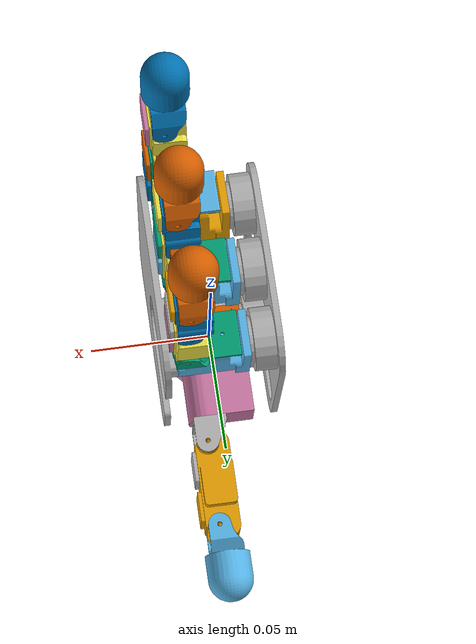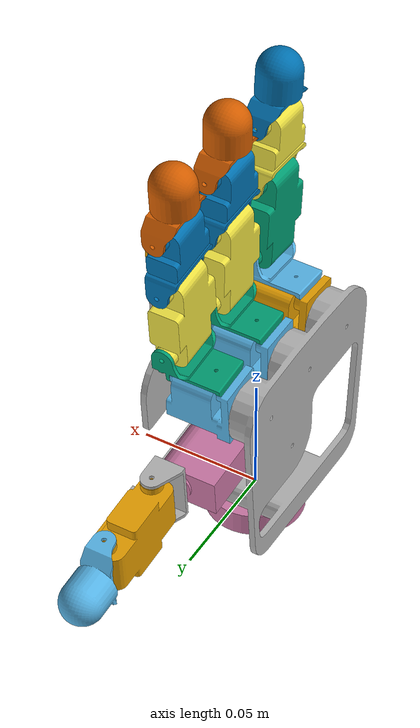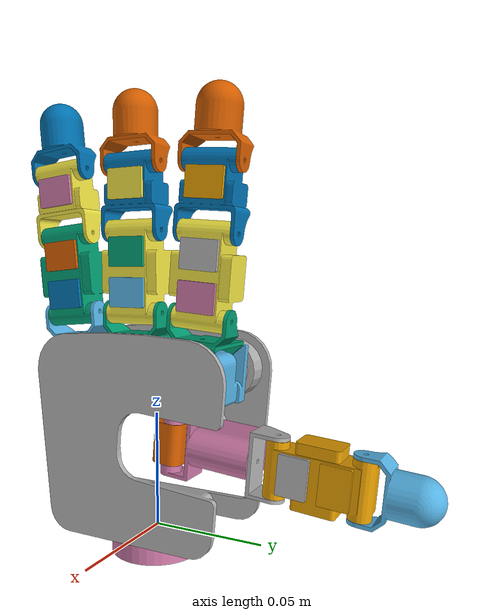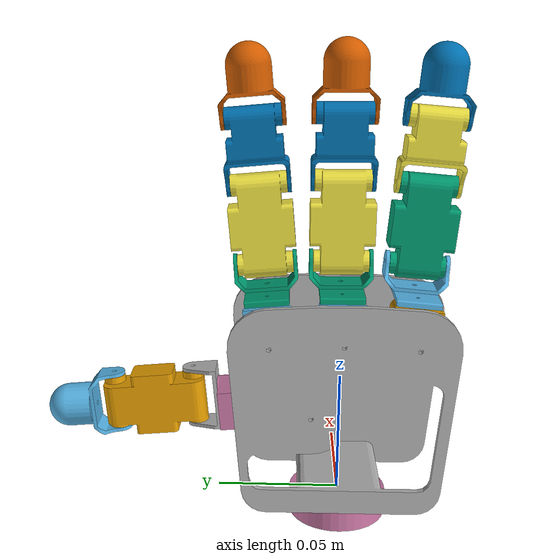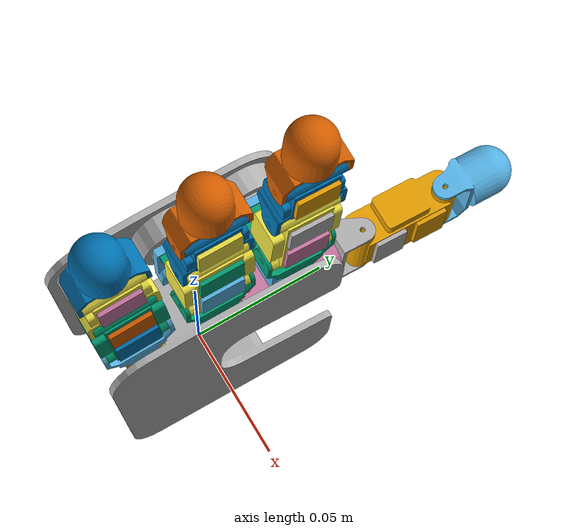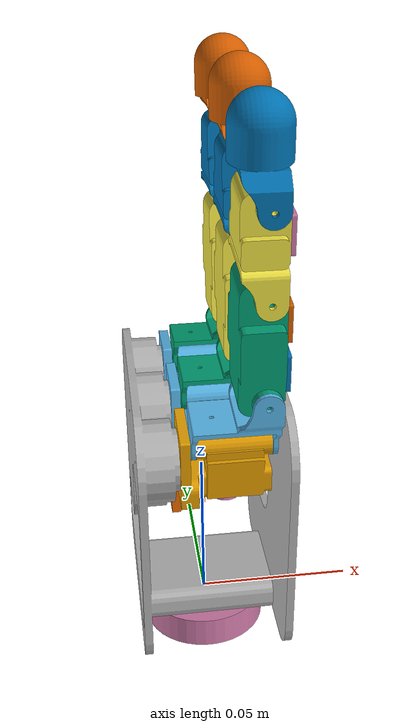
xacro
<?xml version="1.0" encoding="UTF-8"?>
<robot name="kistar_hand" xmlns:xacro="http://www.ros.org/wiki/xacro">
  <link name="kistar_hand"/>
  <joint name="index_base_joint" type="fixed">
    <origin xyz="0. 0.02883 -0.00126" rpy="-0.0873 0. 0. "/>
    <parent link="palm"/>
    <child link="index_basemotor"/>
  </joint>
  <joint name="index_joint_0" type="revolute">
    <origin xyz="0.02325 0. 0.0047 " rpy="0.0000013 0. 0. "/>
    <parent link="index_basemotor"/>
    <child link="index_link_0"/>
    <axis xyz="1. 0. 0."/>
    <limit lower="-0.261799" upper="0.261799" effort="0.2" velocity="6.283"/>
  </joint>
  <joint name="index_joint_1" type="revolute">
    <origin xyz="0.002 0. 0.019" rpy="0. 0. 0."/>
    <parent link="index_link_0"/>
    <child link="index_link_1"/>
    <axis xyz="0. 1. 0."/>
    <limit lower="0." upper="1.5707999" effort="0.2" velocity="6.283"/>
  </joint>
  <joint name="index_joint_2" type="revolute">
    <origin xyz="0. 0. 0.0335" rpy="0. 0. 0."/>
    <parent link="index_link_1"/>
    <child link="index_link_2"/>
    <axis xyz="0. 1. 0."/>
    <limit lower="0." upper="1.5707999" effort="0.2" velocity="6.283"/>
  </joint>
  <joint name="index_joint_3" type="revolute">
    <origin xyz="0. 0. 0.0267" rpy="0. 0. 0."/>
    <parent link="index_link_2"/>
    <child link="index_tip"/>
    <axis xyz="0. 1. 0."/>
    <limit lower="0." upper="1.5707999" effort="0.2" velocity="6.283"/>
  </joint>
  <joint name="index_link_1_index_sensor_0" type="fixed">
    <origin xyz="0.00525 0. 0.00865" rpy="0. 0. 0."/>
    <parent link="index_link_1"/>
    <child link="kistar_hand_index_sensor_0"/>
  </joint>
  <joint name="index_link_1_index_sensor_1" type="fixed">
    <origin xyz="0.00525 0. 0.02485" rpy="0. 0. 0."/>
    <parent link="index_link_1"/>
    <child link="kistar_hand_index_sensor_1"/>
  </joint>
  <joint name="index_link_2_index_sensor_2" type="fixed">
    <origin xyz="0.00525 0. 0.01805" rpy="0. 0. 0."/>
    <parent link="index_link_2"/>
    <child link="kistar_hand_index_sensor_2"/>
  </joint>
  <joint name="kistar_mount_joint" type="fixed">
    <origin xyz="-0.01 0. 0.071 " rpy="0. 0. 0."/>
    <parent link="mount"/>
    <child link="palm"/>
  </joint>
  <joint name="middle_base_joint" type="fixed">
    <origin xyz="0. 0. 0." rpy="0. 0. 0."/>
    <parent link="palm"/>
    <child link="middle_basemotor"/>
  </joint>
  <joint name="middle_joint_0" type="revolute">
    <origin xyz="0.02325 0. 0.0047 " rpy="0. 0. 0."/>
    <parent link="middle_basemotor"/>
    <child link="middle_link_0"/>
    <axis xyz="1. 0. 0."/>
    <limit lower="-0.261799" upper="0.261799" effort="0.2" velocity="6.283"/>
  </joint>
  <joint name="middle_joint_1" type="revolute">
    <origin xyz="0.002 0. 0.019" rpy="0. 0. 0."/>
    <parent link="middle_link_0"/>
    <child link="middle_link_1"/>
    <axis xyz="0. 1. 0."/>
    <limit lower="0." upper="1.5707999" effort="0.2" velocity="6.283"/>
  </joint>
  <joint name="middle_joint_2" type="revolute">
    <origin xyz="0. 0. 0.0335" rpy="0. 0. 0."/>
    <parent link="middle_link_1"/>
    <child link="middle_link_2"/>
    <axis xyz="0. 1. 0."/>
    <limit lower="0." upper="1.5707999" effort="0.2" velocity="6.283"/>
  </joint>
  <joint name="middle_joint_3" type="revolute">
    <origin xyz="0. 0. 0.0267" rpy="0. 0. 0."/>
    <parent link="middle_link_2"/>
    <child link="middle_tip"/>
    <axis xyz="0. 1. 0."/>
    <limit lower="0." upper="1.5707999" effort="0.2" velocity="6.283"/>
  </joint>
  <joint name="middle_link_1_middle_sensor_0" type="fixed">
    <origin xyz="0.00525 0. 0.00865" rpy="0. 0. 0."/>
    <parent link="middle_link_1"/>
    <child link="kistar_hand_middle_sensor_0"/>
  </joint>
  <joint name="middle_link_1_middle_sensor_1" type="fixed">
    <origin xyz="0.00525 0. 0.02485" rpy="0. 0. 0."/>
    <parent link="middle_link_1"/>
    <child link="kistar_hand_middle_sensor_1"/>
  </joint>
  <joint name="middle_link_2_middle_sensor_2" type="fixed">
    <origin xyz="0.00525 0. 0.01805" rpy="0. 0. 0."/>
    <parent link="middle_link_2"/>
    <child link="kistar_hand_middle_sensor_2"/>
  </joint>
  <joint name="ring_base_joint" type="fixed">
    <origin xyz="0. -0.02883 -0.00126" rpy="0.0873 0. 0. "/>
    <parent link="palm"/>
    <child link="ring_basemotor"/>
  </joint>
  <joint name="ring_joint_0" type="revolute">
    <origin xyz="0.02325 -0. 0.0047 " rpy="-0.0000013 0. 0. "/>
    <parent link="ring_basemotor"/>
    <child link="ring_link_0"/>
    <axis xyz="1. 0. 0."/>
    <limit lower="-0.261799" upper="0.261799" effort="0.2" velocity="6.283"/>
  </joint>
  <joint name="ring_joint_1" type="revolute">
    <origin xyz="0.002 0. 0.019" rpy="0. 0. 0."/>
    <parent link="ring_link_0"/>
    <child link="ring_link_1"/>
    <axis xyz="0. 1. 0."/>
    <limit lower="0." upper="1.5707999" effort="0.2" velocity="6.283"/>
  </joint>
  <joint name="ring_joint_2" type="revolute">
    <origin xyz="0. -0. 0.0335" rpy="0. 0. 0."/>
    <parent link="ring_link_1"/>
    <child link="ring_link_2"/>
    <axis xyz="0. 1. 0."/>
    <limit lower="0." upper="1.5707999" effort="0.2" velocity="6.283"/>
  </joint>
  <joint name="ring_joint_3" type="revolute">
    <origin xyz="0. -0. 0.0267" rpy="0. 0. 0."/>
    <parent link="ring_link_2"/>
    <child link="ring_tip"/>
    <axis xyz="0. 1. 0."/>
    <limit lower="0." upper="1.5707999" effort="0.2" velocity="6.283"/>
  </joint>
  <joint name="ring_link_1_ring_sensor_0" type="fixed">
    <origin xyz="0.00525 -0. 0.00865" rpy="0. 0. 0."/>
    <parent link="ring_link_1"/>
    <child link="kistar_hand_ring_sensor_0"/>
  </joint>
  <joint name="ring_link_1_ring_sensor_1" type="fixed">
    <origin xyz="0.00525 -0. 0.02485" rpy="0. 0. 0."/>
    <parent link="ring_link_1"/>
    <child link="kistar_hand_ring_sensor_1"/>
  </joint>
  <joint name="ring_link_2_ring_sensor_2" type="fixed">
    <origin xyz="0.00525 -0. 0.01805" rpy="0. 0. 0."/>
    <parent link="ring_link_2"/>
    <child link="kistar_hand_ring_sensor_2"/>
  </joint>
  <joint name="root_joint" type="fixed">
    <origin xyz="0. 0. 0." rpy="0. 0. 0."/>
    <parent link="kistar_hand"/>
    <child link="mount"/>
  </joint>
  <joint name="thumb_base_joint" type="fixed">
    <origin xyz="0. 0.01224 -0.02988" rpy="-0.0873 0. 0. "/>
    <parent link="palm"/>
    <child link="thumb_basemotor"/>
  </joint>
  <joint name="thumb_joint_0" type="revolute">
    <origin xyz="0.0197 0.002 0. " rpy="-1.5707986 0. 0. "/>
    <parent link="thumb_basemotor"/>
    <child link="thumb_link_0"/>
    <axis xyz="0. 1. 0."/>
    <limit lower="0." upper="1.5707999" effort="0.2" velocity="6.283"/>
  </joint>
  <joint name="thumb_joint_1" type="revolute">
    <origin xyz="-0.002 0. 0.036" rpy="-0.0000013 0. 0. "/>
    <parent link="thumb_link_0"/>
    <child link="thumb_link_1"/>
    <axis xyz="0. 0. 1."/>
    <limit lower="-1.5707999" upper="1.5707999" effort="0.2" velocity="6.283"/>
  </joint>
  <joint name="thumb_joint_2" type="revolute">
    <origin xyz="0.002 -0. 0.0102" rpy="0. 0. 0."/>
    <parent link="thumb_link_1"/>
    <child link="thumb_link_2"/>
    <axis xyz="0. 1. 0."/>
    <limit lower="0." upper="1.5707999" effort="0.2" velocity="6.283"/>
  </joint>
  <joint name="thumb_joint_3" type="revolute">
    <origin xyz="0. 0. 0.0335" rpy="0. 0. 0."/>
    <parent link="thumb_link_2"/>
    <child link="thumb_tip"/>
    <axis xyz="0. 1. 0."/>
    <limit lower="0." upper="1.5707999" effort="0.2" velocity="6.283"/>
  </joint>
  <joint name="thumb_link_2_thumb_sensor_0" type="fixed">
    <origin xyz="0.00525 0. 0.00865" rpy="0. 0. 0."/>
    <parent link="thumb_link_2"/>
    <child link="kistar_hand_thumb_sensor_0"/>
  </joint>
  <joint name="thumb_link_2_thumb_sensor_1" type="fixed">
    <origin xyz="0.00525 0. 0.02485" rpy="0. 0. 0."/>
    <parent link="thumb_link_2"/>
    <child link="kistar_hand_thumb_sensor_1"/>
  </joint>
  <link name="index_basemotor">
    <inertial>
      <origin xyz="0.01338 0.00095 -0.00207" rpy="0. 0. 0."/>
      <mass value="0.01904"/>
      <inertia ixx="0.0000012" ixy="0.0000003" ixz="-0.0000006" iyy="0.0000055" iyz="-0." izz="0.0000051"/>
    </inertial>
    <visual>
      <origin xyz="0. -0. 0." rpy="0.0000013 0. 0. "/>
      <geometry>
        <mesh filename="package://franka_kistar_description/meshes/hand/index_basemotor_visuals.obj" scale="1. 1. 1."/>
      </geometry>
    </visual>
    <collision>
      <origin xyz="0.01407 0.0 0.0" rpy="0.0000013 0. 0."/>
      <geometry>
        <box size="0.02815 0.01920 0.02400"/>
      </geometry>
    </collision>
  </link>
  <link name="index_link_0">
    <inertial>
      <origin xyz="-0.00353 0. 0.00948" rpy="0. 0. 0."/>
      <mass value="0.00473"/>
      <inertia ixx="0.0000008" ixy="0." ixz="-0.0000001" iyy="0.0000009" iyz="0." izz="0.0000006"/>
    </inertial>
    <visual>
      <origin xyz="0. 0. 0." rpy="0. 0. 0."/>
      <geometry>
        <mesh filename="package://franka_kistar_description/meshes/hand/index_link_0_visuals.obj" scale="1. 1. 1."/>
      </geometry>
    </visual>
    <collision>
      <origin xyz="-0.00650 0.0 0.00977" rpy="0. 0. 0."/>
      <geometry>
        <box size="0.02600 0.02600 0.02845"/>
      </geometry>
    </collision>
  </link>
  <link name="index_link_1">
    <inertial>
      <origin xyz="-0.00166 0. 0.01675" rpy="0. 0. 0."/>
      <mass value="0.03549"/>
      <inertia ixx="0.0000161" ixy="0." ixz="-0.000001" iyy="0.0000151" iyz="0." izz="0.0000022"/>
    </inertial>
    <visual>
      <origin xyz="0. 0. 0." rpy="0. 0. 0."/>
      <geometry>
        <mesh filename="package://franka_kistar_description/meshes/hand/index_link_1_visuals.obj" scale="1. 1. 1."/>
      </geometry>
    </visual>
    <collision>
      <origin xyz="-0.00162 0.0 0.01675" rpy="0. 0. 0."/>
      <geometry>
        <box size="0.01375 0.02610 0.04250"/>
      </geometry>
    </collision>
  </link>
  <link name="index_link_2">
    <inertial>
      <origin xyz="-0.00154 0.00021 0.01842" rpy="0. 0. 0."/>
      <mass value="0.01827"/>
      <inertia ixx="0.000008" ixy="-0." ixz="-0.0000005" iyy="0.0000075" iyz="0." izz="0.0000011"/>
    </inertial>
    <visual>
      <origin xyz="0. 0. 0." rpy="0. 0. 0."/>
      <geometry>
        <mesh filename="package://franka_kistar_description/meshes/hand/index_link_2_visuals.obj" scale="1. 1. 1."/>
      </geometry>
    </visual>
    <collision>
      <origin xyz="-0.00163 0.0 0.01335" rpy="0. 0. 0."/>
      <geometry>
        <box size="0.01375 0.02600 0.03570"/>
      </geometry>
    </collision>
  </link>
  <link name="index_tip">
    <inertial>
      <origin xyz="-0.0019 0. 0.01626" rpy="0. 0. 0."/>
      <mass value="0.00719"/>
      <inertia ixx="0.0000024" ixy="0." ixz="-0.0000002" iyy="0.0000024" iyz="0." izz="0.0000004"/>
    </inertial>
    <visual>
      <origin xyz="0. 0. -0." rpy="0. 0. 0."/>
      <geometry>
        <mesh filename="package://franka_kistar_description/meshes/hand/index_tip_visuals.obj" scale="1. 1. 1."/>
      </geometry>
    </visual>
    <collision>
      <origin xyz="-0.00200 0.0 0.01223" rpy="0. 0. 0."/>
      <geometry>
        <box size="0.01800 0.02600 0.03345"/>
      </geometry>
    </collision>
  </link>
  <link name="kistar_hand_index_sensor_0">
    <visual>
      <origin xyz="0. 0. -0." rpy="0. 0. 0."/>
      <geometry>
        <mesh filename="package://franka_kistar_description/meshes/hand/kistar_hand_index_sensor_0_visuals.obj" scale="1. 1. 1."/>
      </geometry>
    </visual>
  </link>
  <link name="kistar_hand_index_sensor_1">
    <visual>
      <origin xyz="0. 0. 0." rpy="0. 0. 0."/>
      <geometry>
        <mesh filename="package://franka_kistar_description/meshes/hand/kistar_hand_index_sensor_1_visuals.obj" scale="1. 1. 1."/>
      </geometry>
    </visual>
  </link>
  <link name="kistar_hand_index_sensor_2">
    <visual>
      <origin xyz="0. 0. -0." rpy="0. 0. 0."/>
      <geometry>
        <mesh filename="package://franka_kistar_description/meshes/hand/kistar_hand_index_sensor_2_visuals.obj" scale="1. 1. 1."/>
      </geometry>
    </visual>
  </link>
  <link name="kistar_hand_middle_sensor_0">
    <visual>
      <origin xyz="0. 0. 0." rpy="0. 0. 0."/>
      <geometry>
        <mesh filename="package://franka_kistar_description/meshes/hand/kistar_hand_middle_sensor_0_visuals.obj" scale="1. 1. 1."/>
      </geometry>
    </visual>
  </link>
  <link name="kistar_hand_middle_sensor_1">
    <visual>
      <origin xyz="0. 0. 0." rpy="0. 0. 0."/>
      <geometry>
        <mesh filename="package://franka_kistar_description/meshes/hand/kistar_hand_middle_sensor_1_visuals.obj" scale="1. 1. 1."/>
      </geometry>
    </visual>
  </link>
  <link name="kistar_hand_middle_sensor_2">
    <visual>
      <origin xyz="0. 0. 0." rpy="0. 0. 0."/>
      <geometry>
        <mesh filename="package://franka_kistar_description/meshes/hand/kistar_hand_middle_sensor_2_visuals.obj" scale="1. 1. 1."/>
      </geometry>
    </visual>
  </link>
  <link name="kistar_hand_ring_sensor_0">
    <visual>
      <origin xyz="0. -0. -0." rpy="0. 0. 0."/>
      <geometry>
        <mesh filename="package://franka_kistar_description/meshes/hand/kistar_hand_ring_sensor_0_visuals.obj" scale="1. 1. 1."/>
      </geometry>
    </visual>
  </link>
  <link name="kistar_hand_ring_sensor_1">
    <visual>
      <origin xyz="0. -0. 0." rpy="0. 0. 0."/>
      <geometry>
        <mesh filename="package://franka_kistar_description/meshes/hand/kistar_hand_ring_sensor_1_visuals.obj" scale="1. 1. 1."/>
      </geometry>
    </visual>
  </link>
  <link name="kistar_hand_ring_sensor_2">
    <visual>
      <origin xyz="0. -0. -0." rpy="0. 0. 0."/>
      <geometry>
        <mesh filename="package://franka_kistar_description/meshes/hand/kistar_hand_ring_sensor_2_visuals.obj" scale="1. 1. 1."/>
      </geometry>
    </visual>
  </link>
  <link name="kistar_hand_thumb_sensor_0">
    <visual>
      <origin xyz="0. 0. 0." rpy="0. 0. 0."/>
      <geometry>
        <mesh filename="package://franka_kistar_description/meshes/hand/kistar_hand_thumb_sensor_0_visuals.obj" scale="1. 1. 1."/>
      </geometry>
    </visual>
  </link>
  <link name="kistar_hand_thumb_sensor_1">
    <visual>
      <origin xyz="0. 0. 0." rpy="0. 0. 0."/>
      <geometry>
        <mesh filename="package://franka_kistar_description/meshes/hand/kistar_hand_thumb_sensor_1_visuals.obj" scale="1. 1. 1."/>
      </geometry>
    </visual>
  </link>
  <link name="middle_basemotor">
    <inertial>
      <origin xyz="0.01338 0.00095 -0.00207" rpy="0. 0. 0."/>
      <mass value="0.01904"/>
      <inertia ixx="0.0000012" ixy="0.0000003" ixz="-0.0000006" iyy="0.0000055" iyz="-0." izz="0.0000051"/>
    </inertial>
    <visual>
      <origin xyz="0. 0. 0." rpy="0. 0. 0."/>
      <geometry>
        <mesh filename="package://franka_kistar_description/meshes/hand/middle_basemotor_visuals.obj" scale="1. 1. 1."/>
      </geometry>
    </visual>
    <collision>
      <origin xyz="0.01407 0.0 0.0" rpy="0. 0. 0."/>
      <geometry>
        <box size="0.02815 0.01920 0.02400"/>
      </geometry>
    </collision>
  </link>
  <link name="middle_link_0">
    <inertial>
      <origin xyz="-0.00353 0. 0.00948" rpy="0. 0. 0."/>
      <mass value="0.00473"/>
      <inertia ixx="0.0000008" ixy="0." ixz="-0.0000001" iyy="0.0000009" iyz="0." izz="0.0000006"/>
    </inertial>
    <visual>
      <origin xyz="0. 0. 0." rpy="0. 0. 0."/>
      <geometry>
        <mesh filename="package://franka_kistar_description/meshes/hand/middle_link_0_visuals.obj" scale="1. 1. 1."/>
      </geometry>
    </visual>
    <collision>
      <origin xyz="-0.00650 0.0 0.00977" rpy="0. 0. 0."/>
      <geometry>
        <box size="0.02600 0.02600 0.02845"/>
      </geometry>
    </collision>
  </link>
  <link name="middle_link_1">
    <inertial>
      <origin xyz="-0.00166 0. 0.01675" rpy="0. 0. 0."/>
      <mass value="0.03549"/>
      <inertia ixx="0.0000161" ixy="0." ixz="-0.000001" iyy="0.0000151" iyz="0." izz="0.0000022"/>
    </inertial>
    <visual>
      <origin xyz="0. 0. 0." rpy="0. 0. 0."/>
      <geometry>
        <mesh filename="package://franka_kistar_description/meshes/hand/middle_link_1_visuals.obj" scale="1. 1. 1."/>
      </geometry>
    </visual>
    <collision>
      <origin xyz="-0.00162 0.0 0.01675" rpy="0. 0. 0."/>
      <geometry>
        <box size="0.01375 0.02610 0.04250"/>
      </geometry>
    </collision>
  </link>
  <link name="middle_link_2">
    <inertial>
      <origin xyz="-0.00154 0.00021 0.01842" rpy="0. 0. 0."/>
      <mass value="0.01827"/>
      <inertia ixx="0.000008" ixy="-0." ixz="-0.0000005" iyy="0.0000075" iyz="0." izz="0.0000011"/>
    </inertial>
    <visual>
      <origin xyz="0. 0. 0." rpy="0. 0. 0."/>
      <geometry>
        <mesh filename="package://franka_kistar_description/meshes/hand/middle_link_2_visuals.obj" scale="1. 1. 1."/>
      </geometry>
    </visual>
    <collision>
      <origin xyz="-0.00163 0.0 0.01335" rpy="0. 0. 0."/>
      <geometry>
        <box size="0.01375 0.02600 0.03570"/>
      </geometry>
    </collision>
  </link>
  <link name="middle_tip">
    <inertial>
      <origin xyz="-0.0019 0. 0.01626" rpy="0. 0. 0."/>
      <mass value="0.00719"/>
      <inertia ixx="0.0000024" ixy="0." ixz="-0.0000002" iyy="0.0000024" iyz="0." izz="0.0000004"/>
    </inertial>
    <visual>
      <origin xyz="0. 0. 0." rpy="0. 0. 0."/>
      <geometry>
        <mesh filename="package://franka_kistar_description/meshes/hand/middle_tip_visuals.obj" scale="1. 1. 1."/>
      </geometry>
    </visual>
    <collision>
      <origin xyz="-0.00200 0.0 0.01223" rpy="0. 0. 0."/>
      <geometry>
        <box size="0.01800 0.02600 0.03345"/>
      </geometry>
    </collision>
  </link>
  <link name="mount">
    <visual>
      <origin xyz="0. 0. 0." rpy="0. 0. 0."/>
      <geometry>
        <mesh filename="package://franka_kistar_description/meshes/hand/mount_visuals.obj" scale="1. 1. 1."/>
      </geometry>
    </visual>
  </link>
  <link name="palm">
    <inertial>
      <origin xyz="-0.01669 0.00079 -0.02862" rpy="0. 0. 0."/>
      <mass value="0.15476"/>
      <inertia ixx="0.0003271" ixy="-0.0000105" ixz="0.0000539" iyy="0.000351" iyz="-0.0000034" izz="0.0001632"/>
    </inertial>
    <visual>
      <origin xyz="0. 0. 0." rpy="0. 0. 0."/>
      <geometry>
        <mesh filename="package://franka_kistar_description/meshes/hand/palm_visuals.obj" scale="1. 1. 1."/>
      </geometry>
    </visual>
    <collision>
      <origin xyz="0.01070 0.0 -0.02702" rpy="0. 0. 0."/>
      <geometry>
        <box size="0.04700 0.08954 0.08512"/>
      </geometry>
    </collision>

  </link>
  <link name="ring_basemotor">
    <inertial>
      <origin xyz="0.01338 0.00095 -0.00207" rpy="0. 0. 0."/>
      <mass value="0.01904"/>
      <inertia ixx="0.0000012" ixy="0.0000003" ixz="-0.0000006" iyy="0.0000055" iyz="-0." izz="0.0000051"/>
    </inertial>
    <visual>
      <origin xyz="0. 0. 0." rpy="-0.0000013 0. 0. "/>
      <geometry>
        <mesh filename="package://franka_kistar_description/meshes/hand/ring_basemotor_visuals.obj" scale="1. 1. 1."/>
      </geometry>
    </visual>
    <collision>
      <origin xyz="0.01407 0.0 0.0" rpy="-0.0000013 0. 0."/>
      <geometry>
        <box size="0.02815 0.01920 0.02400"/>
      </geometry>
    </collision>
  </link>
  <link name="ring_link_0">
    <inertial>
      <origin xyz="-0.00353 0. 0.00948" rpy="0. 0. 0."/>
      <mass value="0.00473"/>
      <inertia ixx="0.0000008" ixy="0." ixz="-0.0000001" iyy="0.0000009" iyz="0." izz="0.0000006"/>
    </inertial>
    <visual>
      <origin xyz="0. 0. 0." rpy="0. 0. 0."/>
      <geometry>
        <mesh filename="package://franka_kistar_description/meshes/hand/ring_link_0_visuals.obj" scale="1. 1. 1."/>
      </geometry>
    </visual>
    <collision>
      <origin xyz="-0.00650 0.0 0.00977" rpy="0. 0. 0."/>
      <geometry>
        <box size="0.02600 0.02600 0.02845"/>
      </geometry>
    </collision>
  </link>
  <link name="ring_link_1">
    <inertial>
      <origin xyz="-0.00166 0. 0.01675" rpy="0. 0. 0."/>
      <mass value="0.03549"/>
      <inertia ixx="0.0000161" ixy="0." ixz="-0.000001" iyy="0.0000151" iyz="0." izz="0.0000022"/>
    </inertial>
    <visual>
      <origin xyz="0. -0. 0." rpy="0. 0. 0."/>
      <geometry>
        <mesh filename="package://franka_kistar_description/meshes/hand/ring_link_1_visuals.obj" scale="1. 1. 1."/>
      </geometry>
    </visual>
    <collision>
      <origin xyz="-0.00162 0.0 0.01675" rpy="0. 0. 0."/>
      <geometry>
        <box size="0.01375 0.02610 0.04250"/>
      </geometry>
    </collision>
  </link>
  <link name="ring_link_2">
    <inertial>
      <origin xyz="-0.00154 0.00021 0.01842" rpy="0. 0. 0."/>
      <mass value="0.01827"/>
      <inertia ixx="0.000008" ixy="-0." ixz="-0.0000005" iyy="0.0000075" iyz="0." izz="0.0000011"/>
    </inertial>
    <visual>
      <origin xyz="0. -0. 0." rpy="0. 0. 0."/>
      <geometry>
        <mesh filename="package://franka_kistar_description/meshes/hand/ring_link_2_visuals.obj" scale="1. 1. 1."/>
      </geometry>
    </visual>
    <collision>
      <origin xyz="-0.00163 0.0 0.01335" rpy="0. 0. 0."/>
      <geometry>
        <box size="0.01375 0.02600 0.03570"/>
      </geometry>
    </collision>
  </link>
  <link name="ring_tip">
    <inertial>
      <origin xyz="-0.0019 0. 0.01626" rpy="0. 0. 0."/>
      <mass value="0.00719"/>
      <inertia ixx="0.0000024" ixy="0." ixz="-0.0000002" iyy="0.0000024" iyz="0." izz="0.0000004"/>
    </inertial>
    <visual>
      <origin xyz="0. -0. -0." rpy="0. 0. 0."/>
      <geometry>
        <mesh filename="package://franka_kistar_description/meshes/hand/ring_tip_visuals.obj" scale="1. 1. 1."/>
      </geometry>
    </visual>
    <collision>
      <origin xyz="-0.00200 0.0 0.01223" rpy="0. 0. 0."/>
      <geometry>
        <box size="0.01800 0.02600 0.03345"/>
      </geometry>
    </collision>
  </link>
  <link name="thumb_basemotor">
    <inertial>
      <origin xyz="0.01002 0.00044 0. " rpy="0. 0. 0."/>
      <mass value="0.01904"/>
      <inertia ixx="0.0000011" ixy="0.0000001" ixz="0." iyy="0.0000034" iyz="0." izz="0.0000032"/>
    </inertial>
    <visual>
      <origin xyz="0. 0. -0." rpy="0.0000013 0. 0. "/>
      <geometry>
        <mesh filename="package://franka_kistar_description/meshes/hand/thumb_basemotor_visuals.obj" scale="1. 1. 1."/>
      </geometry>
    </visual>
    <collision>
      <origin xyz="0.01200 0.0 0.0" rpy="0.0000013 0. 0."/>
      <geometry>
        <box size="0.02400 0.01920 0.02400"/>
      </geometry>
    </collision>
  </link>
  <link name="thumb_link_0">
    <inertial>
      <origin xyz="-0.00714 0. 0.02081" rpy="0. 0. 0."/>
      <mass value="0.02423"/>
      <inertia ixx="0.0000132" ixy="0." ixz="-0.0000039" iyy="0.000015" iyz="0." izz="0.0000032"/>
    </inertial>
    <visual>
      <origin xyz="0. 0. 0." rpy="-0.0000013 0. 0. "/>
      <geometry>
        <mesh filename="package://franka_kistar_description/meshes/hand/thumb_link_0_visuals.obj" scale="1. 1. 1."/>
      </geometry>
    </visual>
    <collision>
      <origin xyz="-0.00716 0.0 0.01576" rpy="-0.0000013 0. 0."/>
      <geometry>
        <box size="0.02628 0.02600 0.04048"/>
      </geometry>
    </collision>
  </link>
  <link name="thumb_link_1">
    <inertial>
      <origin xyz="0.00043 0. 0.00345" rpy="0. 0. 0."/>
      <mass value="0.00191"/>
      <inertia ixx="0.0000002" ixy="0." ixz="0." iyy="0.0000001" iyz="0." izz="0.0000002"/>
    </inertial>
    <visual>
      <origin xyz="0. 0. 0." rpy="0. 0. 0."/>
      <geometry>
        <mesh filename="package://franka_kistar_description/meshes/hand/thumb_link_1_visuals.obj" scale="1. 1. 1."/>
      </geometry>
    </visual>
    <collision>
      <origin xyz="0.0 0.0 0.00724" rpy="0. 0. 0."/>
      <geometry>
        <box size="0.01300 0.02600 0.01448"/>
      </geometry>
    </collision>
  </link>
  <link name="thumb_link_2">
    <inertial>
      <origin xyz="-0.00154 0.00021 0.01842" rpy="0. 0. 0."/>
      <mass value="0.01827"/>
      <inertia ixx="0.000008" ixy="-0." ixz="-0.0000005" iyy="0.0000075" iyz="0." izz="0.0000011"/>
    </inertial>
    <visual>
      <origin xyz="0. 0. 0." rpy="0. 0. 0."/>
      <geometry>
        <mesh filename="package://franka_kistar_description/meshes/hand/thumb_link_2_visuals.obj" scale="1. 1. 1."/>
      </geometry>
    </visual>
    <collision>
      <origin xyz="-0.00162 0.0 0.01675" rpy="0. 0. 0."/>
      <geometry>
        <box size="0.01375 0.02610 0.04250"/>
      </geometry>
    </collision>
  </link>
  <link name="thumb_tip">
    <inertial>
      <origin xyz="-0.0019 0. 0.01626" rpy="0. 0. 0."/>
      <mass value="0.00719"/>
      <inertia ixx="0.0000024" ixy="0." ixz="-0.0000002" iyy="0.0000024" iyz="0." izz="0.0000004"/>
    </inertial>
    <visual>
      <origin xyz="0. 0. 0." rpy="0. 0. 0."/>
      <geometry>
        <mesh filename="package://franka_kistar_description/meshes/hand/thumb_tip_visuals.obj" scale="1. 1. 1."/>
      </geometry>
    </visual>
    <collision>
      <origin xyz="-0.00200 0.0 0.01223" rpy="0. 0. 0."/>
      <geometry>
        <box size="0.01800 0.02600 0.03345"/>
      </geometry>
    </collision>
  </link>
</robot>
